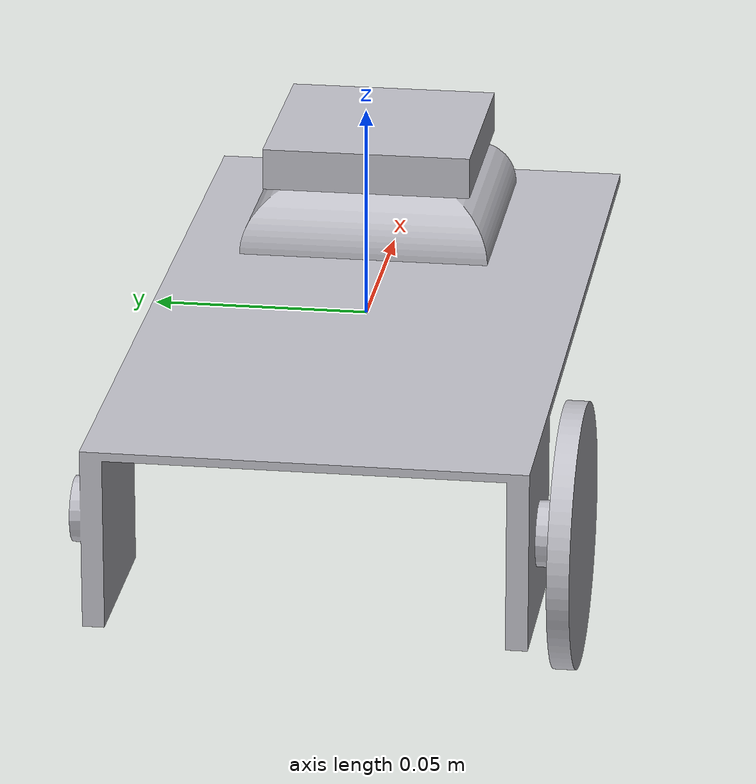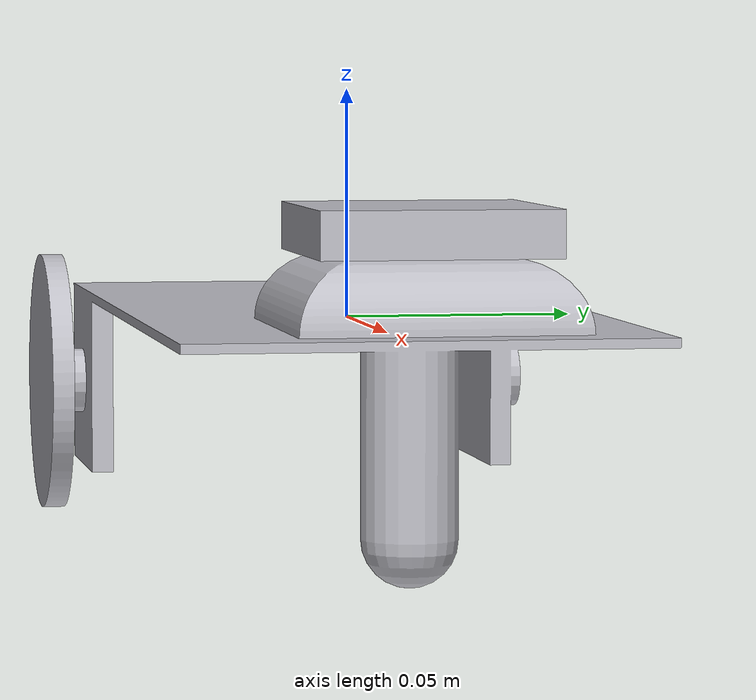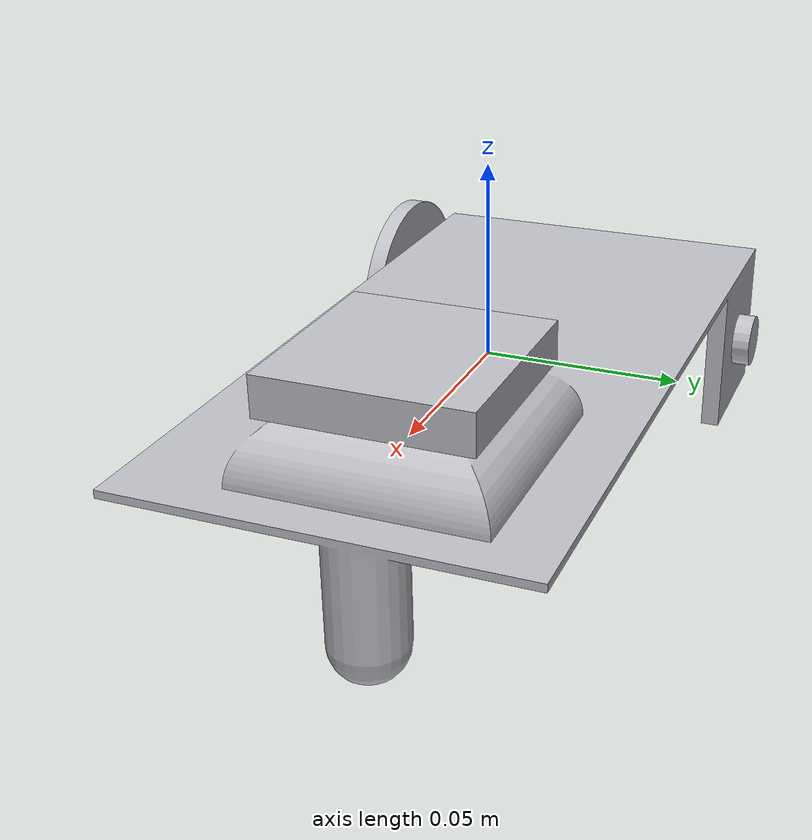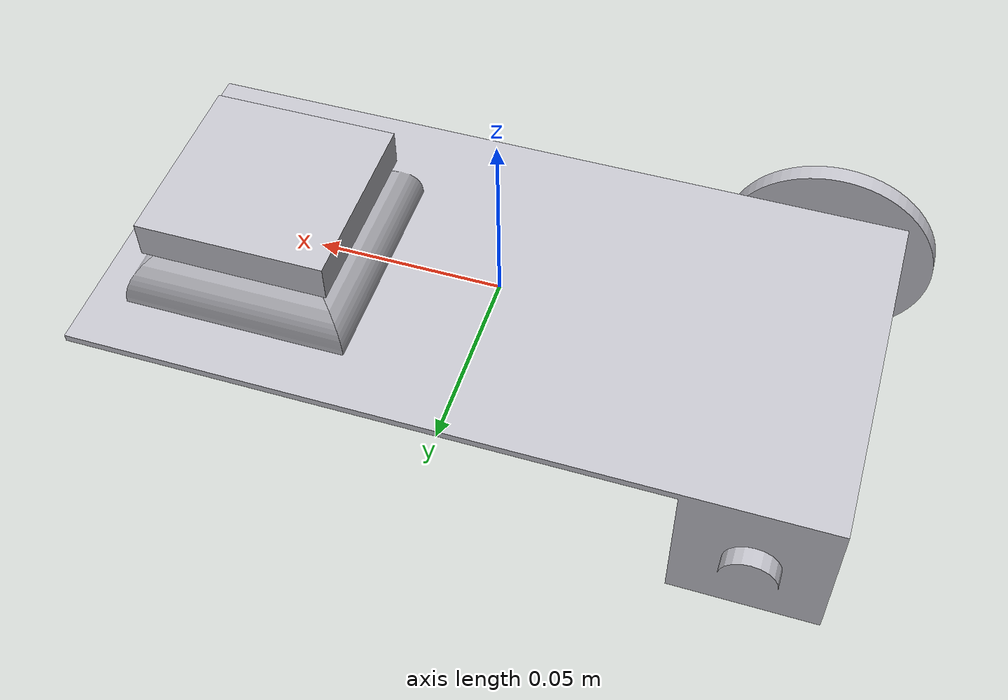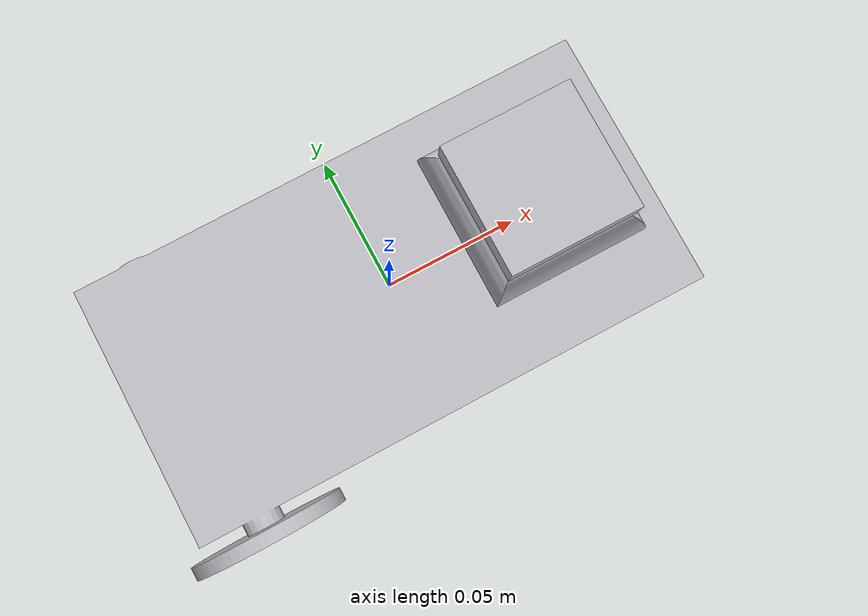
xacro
<?xml version="1.0" ?>
<robot name="robot" xmlns:xacro="http://www.ros.org/wiki/xacro">

<xacro:include filename="$(find robot_description)/urdf/materials.xacro" />
<xacro:include filename="$(find robot_description)/urdf/robot.trans" />
<xacro:include filename="$(find robot_description)/urdf/robot.gazebo" />
<link name="base_link">
  <inertial>
    <origin xyz="0.13550932820328374 0.00188170034684695 0.059220610542569975" rpy="0 0 0"/>
    <mass value="0.9116492466696074"/>
    <inertia ixx="0.000862" iyy="0.003754" izz="0.004251" ixy="-6.9e-05" iyz="-1.9e-05" ixz="-0.000242"/>
  </inertial>
  <visual>
    <origin xyz="0 0 0" rpy="0 0 0"/>
    <geometry>
      <mesh filename="package://robot_description/meshes/base_link.stl" scale="0.001 0.001 0.001"/>
    </geometry>
    <material name="silver"/>
  </visual>
  <collision>
    <origin xyz="0 0 0" rpy="0 0 0"/>
    <geometry>
      <mesh filename="package://robot_description/meshes/base_link.stl" scale="0.001 0.001 0.001"/>
    </geometry>
  </collision>
</link>

<link name="left_wheel_1">
  <inertial>
    <origin xyz="-8.250275608523427e-09 0.0025000000000005296 1.8583628442342404e-07" rpy="0 0 0"/>
    <mass value="0.1109767604880594"/>
    <inertia ixx="2.5e-05" iyy="5e-05" izz="2.5e-05" ixy="-0.0" iyz="0.0" ixz="0.0"/>
  </inertial>
  <visual>
    <origin xyz="-0.0357 -0.055 -0.041666" rpy="0 0 0"/>
    <geometry>
      <mesh filename="package://robot_description/meshes/left_wheel_1.stl" scale="0.001 0.001 0.001"/>
    </geometry>
    <material name="silver"/>
  </visual>
  <collision>
    <origin xyz="-0.0357 -0.055 -0.041666" rpy="0 0 0"/>
    <geometry>
      <mesh filename="package://robot_description/meshes/left_wheel_1.stl" scale="0.001 0.001 0.001"/>
    </geometry>
  </collision>
</link>

<link name="right_wheel_1">
  <inertial>
    <origin xyz="-8.250275344845459e-09 -0.0024999999999987046 1.8583628460383528e-07" rpy="0 0 0"/>
    <mass value="0.11097676048805946"/>
    <inertia ixx="2.5e-05" iyy="5e-05" izz="2.5e-05" ixy="-0.0" iyz="0.0" ixz="0.0"/>
  </inertial>
  <visual>
    <origin xyz="-0.0357 0.055 -0.041666" rpy="0 0 0"/>
    <geometry>
      <mesh filename="package://robot_description/meshes/right_wheel_1.stl" scale="0.001 0.001 0.001"/>
    </geometry>
    <material name="silver"/>
  </visual>
  <collision>
    <origin xyz="-0.0357 0.055 -0.041666" rpy="0 0 0"/>
    <geometry>
      <mesh filename="package://robot_description/meshes/right_wheel_1.stl" scale="0.001 0.001 0.001"/>
    </geometry>
  </collision>
</link>

<link name="liar_1">
  <inertial>
    <origin xyz="-8.25027657302968e-09 -1.951563910473908e-16 0.005000185836284282" rpy="0 0 0"/>
    <mass value="0.19624999999999995"/>
    <inertia ixx="4.3e-05" iyy="4.3e-05" izz="8.2e-05" ixy="-0.0" iyz="0.0" ixz="0.0"/>
  </inertial>
  <visual>
    <origin xyz="-0.1757 -0.005 -0.078666" rpy="0 0 0"/>
    <geometry>
      <mesh filename="package://robot_description/meshes/liar_1.stl" scale="0.001 0.001 0.001"/>
    </geometry>
    <material name="silver"/>
  </visual>
  <collision>
    <origin xyz="-0.1757 -0.005 -0.078666" rpy="0 0 0"/>
    <geometry>
      <mesh filename="package://robot_description/meshes/liar_1.stl" scale="0.001 0.001 0.001"/>
    </geometry>
  </collision>
</link>

<joint name="Rev1" type="continuous">
  <origin xyz="0.0357 0.055 0.041666" rpy="0 0 0"/>
  <parent link="base_link"/>
  <child link="left_wheel_1"/>
  <axis xyz="0.0 1.0 0.0"/>
</joint>

<joint name="Rev2" type="continuous">
  <origin xyz="0.0357 -0.055 0.041666" rpy="0 0 0"/>
  <parent link="base_link"/>
  <child link="right_wheel_1"/>
  <axis xyz="0.0 1.0 0.0"/>
</joint>

<joint name="Rigid3" type="fixed">
  <origin xyz="0.1757 0.005 0.078666" rpy="0 0 0"/>
  <parent link="base_link"/>
  <child link="liar_1"/>
</joint>

</robot>

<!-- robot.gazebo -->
<robot name="robot" xmlns:xacro="http://www.ros.org/wiki/xacro" >

<xacro:property name="body_color" value="Gazebo/Silver" />

<gazebo>
  <plugin name="control" filename="libgazebo_ros_control.so"/>
</gazebo>
<gazebo reference="base_link">
  <material>${body_color}</material>
  <mu1>3500</mu1>
  <mu2>3500</mu2>
  <selfCollide>true</selfCollide>
  <gravity>true</gravity>
</gazebo>

<gazebo reference="left_wheel_1">
  <material>${body_color}</material>
  <mu1>3500</mu1>
  <mu2>3500</mu2>
  <selfCollide>true</selfCollide>
</gazebo>

<gazebo reference="right_wheel_1">
  <material>${body_color}</material>
  <mu1>3500</mu1>
  <mu2>3500</mu2>
  <selfCollide>true</selfCollide>
</gazebo>

<gazebo reference="liar_1">
  <material>${body_color}</material>
  <mu1>3500</mu1>
  <mu2>3500</mu2>
  <selfCollide>true</selfCollide>
</gazebo>
  <gazebo>
  <plugin name="differential_drive_controller" filename="libgazebo_ros_diff_drive.so">

    <!-- Plugin update rate in Hz -->
    <updateRate>$1000</updateRate>

    <!-- Name of left joint, defaults to `left_joint` -->
    <leftJoint>base_link_rev 1</leftJoint>

    <!-- Name of right joint, defaults to `right_joint` -->
    <rightJoint>base_link_rev 2</rightJoint>

    <!-- The distance from the center of one wheel to the other, in meters, defaults to 0.34 m -->
    <wheelSeparation>0.5380</wheelSeparation>

    <!-- Diameter of the wheels, in meters, defaults to 0.15 m -->
    <wheelDiameter>0.2410</wheelDiameter>

    <!-- Wheel acceleration, in rad/s^2, defaults to 0.0 rad/s^2 -->
    <wheelAcceleration>1.0</wheelAcceleration>

    <!-- Maximum torque which the wheels can produce, in Nm, defaults to 5 Nm -->
    <wheelTorque>20</wheelTorque>

    <!-- Topic to receive geometry_msgs/Twist message commands, defaults to `cmd_vel` -->
    <commandTopic>cmd_vel</commandTopic>

    <!-- Topic to publish nav_msgs/Odometry messages, defaults to `odom` -->
    <odometryTopic>odom</odometryTopic>

    <!-- Odometry frame, defaults to `odom` -->
    <odometryFrame>odom</odometryFrame>

    <!-- Robot frame to calculate odometry from, defaults to `base_footprint` -->
    <robotBaseFrame>base_link</robotBaseFrame>

    <!-- Odometry source, 0 for ENCODER, 1 for WORLD, defaults to WORLD -->
    <odometrySource>1</odometrySource>

    <!-- Set to true to publish transforms for the wheel links, defaults to false -->
    <publishWheelTF>true</publishWheelTF>

    <!-- Set to true to publish transforms for the odometry, defaults to true -->
    <publishOdom>true</publishOdom>

    <!-- Set to true to publish sensor_msgs/JointState on /joint_states for the wheel joints, defaults to false -->
    <publishWheelJointState>true</publishWheelJointState>

    <!-- Set to true to swap right and left wheels, defaults to true -->
    <legacyMode>false</legacyMode>
  </plugin>
</gazebo>

</robot>
